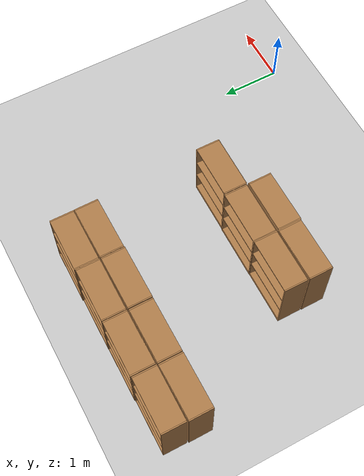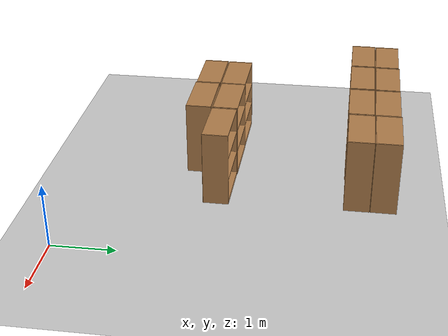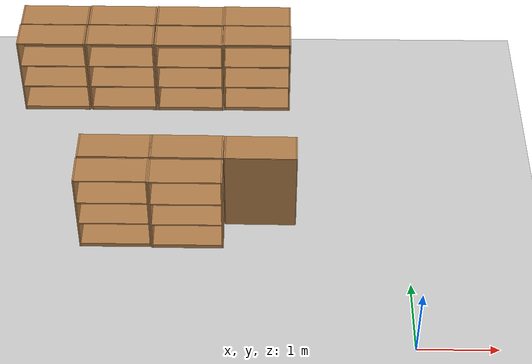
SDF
<sdf version="1.7">
 <world name="default">
  <model name="ground_plane">
   <static>1</static>
   <link name="link">
    <collision name="collision">
     <geometry><plane><normal>0 0 1</normal><size>100 100</size></plane></geometry>
     <surface>
      <contact><collide_bitmask>65535</collide_bitmask></contact>
      <friction><ode><mu>100</mu><mu2>50</mu2></ode></friction>
     </surface>
    </collision>
    <visual name="visual">
     <cast_shadows>0</cast_shadows>
     <geometry><plane><normal>0 0 1</normal><size>100 100</size></plane></geometry>
     <material>
      <script><uri>file://media/materials/scripts/gazebo.material</uri><name>Gazebo/Grey</name></script>
     </material>
    </visual>
   </link>
  </model>
  <model name="bookshelf">
   <static>1</static>
   <link name="link">
    <inertial><mass>1</mass></inertial>
    <collision name="back">
     <pose>0 0.005 0.6 0 -0 0</pose>
     <geometry><box><size>0.9 0.01 1.2</size></box></geometry>
    </collision>
    <visual name="visual1">
     <pose>0 0.005 0.6 0 -0 0</pose>
     <geometry><box><size>0.9 0.01 1.2</size></box></geometry>
     <material>
      <script><uri>file://media/materials/scripts/gazebo.material</uri><name>Gazebo/Wood</name></script>
     </material>
    </visual>
    <collision name="left_side">
     <pose>0.45 -0.195 0.6 0 -0 0</pose>
     <geometry><box><size>0.02 0.4 1.2</size></box></geometry>
    </collision>
    <visual name="visual2">
     <pose>0.45 -0.195 0.6 0 -0 0</pose>
     <geometry><box><size>0.02 0.4 1.2</size></box></geometry>
     <material>
      <script><uri>file://media/materials/scripts/gazebo.material</uri><name>Gazebo/Wood</name></script>
     </material>
    </visual>
    <collision name="right_side">
     <pose>-0.45 -0.195 0.6 0 -0 0</pose>
     <geometry><box><size>0.02 0.4 1.2</size></box></geometry>
    </collision>
    <visual name="visual3">
     <pose>-0.45 -0.195 0.6 0 -0 0</pose>
     <geometry><box><size>0.02 0.4 1.2</size></box></geometry>
     <material>
      <script><uri>file://media/materials/scripts/gazebo.material</uri><name>Gazebo/Wood</name></script>
     </material>
    </visual>
    <collision name="bottom">
     <pose>0 -0.195 0.03 0 -0 0</pose>
     <geometry><box><size>0.88 0.4 0.06</size></box></geometry>
    </collision>
    <visual name="visual4">
     <pose>0 -0.195 0.03 0 -0 0</pose>
     <geometry><box><size>0.88 0.4 0.06</size></box></geometry>
     <material>
      <script><uri>file://media/materials/scripts/gazebo.material</uri><name>Gazebo/Wood</name></script>
     </material>
    </visual>
    <collision name="top">
     <pose>0 -0.195 1.19 0 -0 0</pose>
     <geometry><box><size>0.88 0.4 0.02</size></box></geometry>
    </collision>
    <visual name="visual5">
     <pose>0 -0.195 1.19 0 -0 0</pose>
     <geometry><box><size>0.88 0.4 0.02</size></box></geometry>
     <material>
      <script><uri>file://media/materials/scripts/gazebo.material</uri><name>Gazebo/Wood</name></script>
     </material>
    </visual>
    <collision name="low_shelf">
     <pose>0 -0.195 0.43 0 -0 0</pose>
     <geometry><box><size>0.88 0.4 0.02</size></box></geometry>
    </collision>
    <visual name="visual6">
     <pose>0 -0.195 0.43 0 -0 0</pose>
     <geometry><box><size>0.88 0.4 0.02</size></box></geometry>
     <material>
      <script><uri>file://media/materials/scripts/gazebo.material</uri><name>Gazebo/Wood</name></script>
     </material>
    </visual>
    <collision name="high_shelf">
     <pose>0 -0.195 0.8 0 -0 0</pose>
     <geometry><box><size>0.88 0.4 0.02</size></box></geometry>
    </collision>
    <visual name="visual7">
     <pose>0 -0.195 0.8 0 -0 0</pose>
     <geometry><box><size>0.88 0.4 0.02</size></box></geometry>
     <material>
      <script><uri>file://media/materials/scripts/gazebo.material</uri><name>Gazebo/Wood</name></script>
     </material>
    </visual>
   </link>
   <pose>-1.9532 4.56923 0 0 -0 0</pose>
  </model>
  <model name="bookshelf_clone">
   <static>1</static>
   <link name="link">
    <inertial><mass>1</mass></inertial>
    <collision name="back">
     <pose>0 0.005 0.6 0 -0 0</pose>
     <geometry><box><size>0.9 0.01 1.2</size></box></geometry>
    </collision>
    <visual name="visual1">
     <pose>0 0.005 0.6 0 -0 0</pose>
     <geometry><box><size>0.9 0.01 1.2</size></box></geometry>
     <material>
      <script><uri>file://media/materials/scripts/gazebo.material</uri><name>Gazebo/Wood</name></script>
     </material>
    </visual>
    <collision name="left_side">
     <pose>0.45 -0.195 0.6 0 -0 0</pose>
     <geometry><box><size>0.02 0.4 1.2</size></box></geometry>
    </collision>
    <visual name="visual2">
     <pose>0.45 -0.195 0.6 0 -0 0</pose>
     <geometry><box><size>0.02 0.4 1.2</size></box></geometry>
     <material>
      <script><uri>file://media/materials/scripts/gazebo.material</uri><name>Gazebo/Wood</name></script>
     </material>
    </visual>
    <collision name="right_side">
     <pose>-0.45 -0.195 0.6 0 -0 0</pose>
     <geometry><box><size>0.02 0.4 1.2</size></box></geometry>
    </collision>
    <visual name="visual3">
     <pose>-0.45 -0.195 0.6 0 -0 0</pose>
     <geometry><box><size>0.02 0.4 1.2</size></box></geometry>
     <material>
      <script><uri>file://media/materials/scripts/gazebo.material</uri><name>Gazebo/Wood</name></script>
     </material>
    </visual>
    <collision name="bottom">
     <pose>0 -0.195 0.03 0 -0 0</pose>
     <geometry><box><size>0.88 0.4 0.06</size></box></geometry>
    </collision>
    <visual name="visual4">
     <pose>0 -0.195 0.03 0 -0 0</pose>
     <geometry><box><size>0.88 0.4 0.06</size></box></geometry>
     <material>
      <script><uri>file://media/materials/scripts/gazebo.material</uri><name>Gazebo/Wood</name></script>
     </material>
    </visual>
    <collision name="top">
     <pose>0 -0.195 1.19 0 -0 0</pose>
     <geometry><box><size>0.88 0.4 0.02</size></box></geometry>
    </collision>
    <visual name="visual5">
     <pose>0 -0.195 1.19 0 -0 0</pose>
     <geometry><box><size>0.88 0.4 0.02</size></box></geometry>
     <material>
      <script><uri>file://media/materials/scripts/gazebo.material</uri><name>Gazebo/Wood</name></script>
     </material>
    </visual>
    <collision name="low_shelf">
     <pose>0 -0.195 0.43 0 -0 0</pose>
     <geometry><box><size>0.88 0.4 0.02</size></box></geometry>
    </collision>
    <visual name="visual6">
     <pose>0 -0.195 0.43 0 -0 0</pose>
     <geometry><box><size>0.88 0.4 0.02</size></box></geometry>
     <material>
      <script><uri>file://media/materials/scripts/gazebo.material</uri><name>Gazebo/Wood</name></script>
     </material>
    </visual>
    <collision name="high_shelf">
     <pose>0 -0.195 0.8 0 -0 0</pose>
     <geometry><box><size>0.88 0.4 0.02</size></box></geometry>
    </collision>
    <visual name="visual7">
     <pose>0 -0.195 0.8 0 -0 0</pose>
     <geometry><box><size>0.88 0.4 0.02</size></box></geometry>
     <material>
      <script><uri>file://media/materials/scripts/gazebo.material</uri><name>Gazebo/Wood</name></script>
     </material>
    </visual>
   </link>
   <pose>-2.87744 4.5606 0 0 -0 0</pose>
  </model>
  <model name="bookshelf_clone_0">
   <static>1</static>
   <link name="link">
    <inertial><mass>1</mass></inertial>
    <collision name="back">
     <pose>0 0.005 0.6 0 -0 0</pose>
     <geometry><box><size>0.9 0.01 1.2</size></box></geometry>
    </collision>
    <visual name="visual1">
     <pose>0 0.005 0.6 0 -0 0</pose>
     <geometry><box><size>0.9 0.01 1.2</size></box></geometry>
     <material>
      <script><uri>file://media/materials/scripts/gazebo.material</uri><name>Gazebo/Wood</name></script>
     </material>
    </visual>
    <collision name="left_side">
     <pose>0.45 -0.195 0.6 0 -0 0</pose>
     <geometry><box><size>0.02 0.4 1.2</size></box></geometry>
    </collision>
    <visual name="visual2">
     <pose>0.45 -0.195 0.6 0 -0 0</pose>
     <geometry><box><size>0.02 0.4 1.2</size></box></geometry>
     <material>
      <script><uri>file://media/materials/scripts/gazebo.material</uri><name>Gazebo/Wood</name></script>
     </material>
    </visual>
    <collision name="right_side">
     <pose>-0.45 -0.195 0.6 0 -0 0</pose>
     <geometry><box><size>0.02 0.4 1.2</size></box></geometry>
    </collision>
    <visual name="visual3">
     <pose>-0.45 -0.195 0.6 0 -0 0</pose>
     <geometry><box><size>0.02 0.4 1.2</size></box></geometry>
     <material>
      <script><uri>file://media/materials/scripts/gazebo.material</uri><name>Gazebo/Wood</name></script>
     </material>
    </visual>
    <collision name="bottom">
     <pose>0 -0.195 0.03 0 -0 0</pose>
     <geometry><box><size>0.88 0.4 0.06</size></box></geometry>
    </collision>
    <visual name="visual4">
     <pose>0 -0.195 0.03 0 -0 0</pose>
     <geometry><box><size>0.88 0.4 0.06</size></box></geometry>
     <material>
      <script><uri>file://media/materials/scripts/gazebo.material</uri><name>Gazebo/Wood</name></script>
     </material>
    </visual>
    <collision name="top">
     <pose>0 -0.195 1.19 0 -0 0</pose>
     <geometry><box><size>0.88 0.4 0.02</size></box></geometry>
    </collision>
    <visual name="visual5">
     <pose>0 -0.195 1.19 0 -0 0</pose>
     <geometry><box><size>0.88 0.4 0.02</size></box></geometry>
     <material>
      <script><uri>file://media/materials/scripts/gazebo.material</uri><name>Gazebo/Wood</name></script>
     </material>
    </visual>
    <collision name="low_shelf">
     <pose>0 -0.195 0.43 0 -0 0</pose>
     <geometry><box><size>0.88 0.4 0.02</size></box></geometry>
    </collision>
    <visual name="visual6">
     <pose>0 -0.195 0.43 0 -0 0</pose>
     <geometry><box><size>0.88 0.4 0.02</size></box></geometry>
     <material>
      <script><uri>file://media/materials/scripts/gazebo.material</uri><name>Gazebo/Wood</name></script>
     </material>
    </visual>
    <collision name="high_shelf">
     <pose>0 -0.195 0.8 0 -0 0</pose>
     <geometry><box><size>0.88 0.4 0.02</size></box></geometry>
    </collision>
    <visual name="visual7">
     <pose>0 -0.195 0.8 0 -0 0</pose>
     <geometry><box><size>0.88 0.4 0.02</size></box></geometry>
     <material>
      <script><uri>file://media/materials/scripts/gazebo.material</uri><name>Gazebo/Wood</name></script>
     </material>
    </visual>
   </link>
   <pose>-3.81103 4.5641 0 0 -0 0</pose>
  </model>
  <model name="bookshelf_clone_1">
   <static>1</static>
   <link name="link">
    <inertial><mass>1</mass></inertial>
    <collision name="back">
     <pose>0 0.005 0.6 0 -0 0</pose>
     <geometry><box><size>0.9 0.01 1.2</size></box></geometry>
    </collision>
    <visual name="visual1">
     <pose>0 0.005 0.6 0 -0 0</pose>
     <geometry><box><size>0.9 0.01 1.2</size></box></geometry>
     <material>
      <script><uri>file://media/materials/scripts/gazebo.material</uri><name>Gazebo/Wood</name></script>
     </material>
    </visual>
    <collision name="left_side">
     <pose>0.45 -0.195 0.6 0 -0 0</pose>
     <geometry><box><size>0.02 0.4 1.2</size></box></geometry>
    </collision>
    <visual name="visual2">
     <pose>0.45 -0.195 0.6 0 -0 0</pose>
     <geometry><box><size>0.02 0.4 1.2</size></box></geometry>
     <material>
      <script><uri>file://media/materials/scripts/gazebo.material</uri><name>Gazebo/Wood</name></script>
     </material>
    </visual>
    <collision name="right_side">
     <pose>-0.45 -0.195 0.6 0 -0 0</pose>
     <geometry><box><size>0.02 0.4 1.2</size></box></geometry>
    </collision>
    <visual name="visual3">
     <pose>-0.45 -0.195 0.6 0 -0 0</pose>
     <geometry><box><size>0.02 0.4 1.2</size></box></geometry>
     <material>
      <script><uri>file://media/materials/scripts/gazebo.material</uri><name>Gazebo/Wood</name></script>
     </material>
    </visual>
    <collision name="bottom">
     <pose>0 -0.195 0.03 0 -0 0</pose>
     <geometry><box><size>0.88 0.4 0.06</size></box></geometry>
    </collision>
    <visual name="visual4">
     <pose>0 -0.195 0.03 0 -0 0</pose>
     <geometry><box><size>0.88 0.4 0.06</size></box></geometry>
     <material>
      <script><uri>file://media/materials/scripts/gazebo.material</uri><name>Gazebo/Wood</name></script>
     </material>
    </visual>
    <collision name="top">
     <pose>0 -0.195 1.19 0 -0 0</pose>
     <geometry><box><size>0.88 0.4 0.02</size></box></geometry>
    </collision>
    <visual name="visual5">
     <pose>0 -0.195 1.19 0 -0 0</pose>
     <geometry><box><size>0.88 0.4 0.02</size></box></geometry>
     <material>
      <script><uri>file://media/materials/scripts/gazebo.material</uri><name>Gazebo/Wood</name></script>
     </material>
    </visual>
    <collision name="low_shelf">
     <pose>0 -0.195 0.43 0 -0 0</pose>
     <geometry><box><size>0.88 0.4 0.02</size></box></geometry>
    </collision>
    <visual name="visual6">
     <pose>0 -0.195 0.43 0 -0 0</pose>
     <geometry><box><size>0.88 0.4 0.02</size></box></geometry>
     <material>
      <script><uri>file://media/materials/scripts/gazebo.material</uri><name>Gazebo/Wood</name></script>
     </material>
    </visual>
    <collision name="high_shelf">
     <pose>0 -0.195 0.8 0 -0 0</pose>
     <geometry><box><size>0.88 0.4 0.02</size></box></geometry>
    </collision>
    <visual name="visual7">
     <pose>0 -0.195 0.8 0 -0 0</pose>
     <geometry><box><size>0.88 0.4 0.02</size></box></geometry>
     <material>
      <script><uri>file://media/materials/scripts/gazebo.material</uri><name>Gazebo/Wood</name></script>
     </material>
    </visual>
   </link>
   <pose>-4.74149 4.56279 0 0 -0 0</pose>
  </model>
  <model name="bookshelf_clone_2">
   <static>1</static>
   <link name="link">
    <inertial><mass>1</mass></inertial>
    <collision name="back">
     <pose>0 0.005 0.6 0 -0 0</pose>
     <geometry><box><size>0.9 0.01 1.2</size></box></geometry>
    </collision>
    <visual name="visual1">
     <pose>0 0.005 0.6 0 -0 0</pose>
     <geometry><box><size>0.9 0.01 1.2</size></box></geometry>
     <material>
      <script><uri>file://media/materials/scripts/gazebo.material</uri><name>Gazebo/Wood</name></script>
     </material>
    </visual>
    <collision name="left_side">
     <pose>0.45 -0.195 0.6 0 -0 0</pose>
     <geometry><box><size>0.02 0.4 1.2</size></box></geometry>
    </collision>
    <visual name="visual2">
     <pose>0.45 -0.195 0.6 0 -0 0</pose>
     <geometry><box><size>0.02 0.4 1.2</size></box></geometry>
     <material>
      <script><uri>file://media/materials/scripts/gazebo.material</uri><name>Gazebo/Wood</name></script>
     </material>
    </visual>
    <collision name="right_side">
     <pose>-0.45 -0.195 0.6 0 -0 0</pose>
     <geometry><box><size>0.02 0.4 1.2</size></box></geometry>
    </collision>
    <visual name="visual3">
     <pose>-0.45 -0.195 0.6 0 -0 0</pose>
     <geometry><box><size>0.02 0.4 1.2</size></box></geometry>
     <material>
      <script><uri>file://media/materials/scripts/gazebo.material</uri><name>Gazebo/Wood</name></script>
     </material>
    </visual>
    <collision name="bottom">
     <pose>0 -0.195 0.03 0 -0 0</pose>
     <geometry><box><size>0.88 0.4 0.06</size></box></geometry>
    </collision>
    <visual name="visual4">
     <pose>0 -0.195 0.03 0 -0 0</pose>
     <geometry><box><size>0.88 0.4 0.06</size></box></geometry>
     <material>
      <script><uri>file://media/materials/scripts/gazebo.material</uri><name>Gazebo/Wood</name></script>
     </material>
    </visual>
    <collision name="top">
     <pose>0 -0.195 1.19 0 -0 0</pose>
     <geometry><box><size>0.88 0.4 0.02</size></box></geometry>
    </collision>
    <visual name="visual5">
     <pose>0 -0.195 1.19 0 -0 0</pose>
     <geometry><box><size>0.88 0.4 0.02</size></box></geometry>
     <material>
      <script><uri>file://media/materials/scripts/gazebo.material</uri><name>Gazebo/Wood</name></script>
     </material>
    </visual>
    <collision name="low_shelf">
     <pose>0 -0.195 0.43 0 -0 0</pose>
     <geometry><box><size>0.88 0.4 0.02</size></box></geometry>
    </collision>
    <visual name="visual6">
     <pose>0 -0.195 0.43 0 -0 0</pose>
     <geometry><box><size>0.88 0.4 0.02</size></box></geometry>
     <material>
      <script><uri>file://media/materials/scripts/gazebo.material</uri><name>Gazebo/Wood</name></script>
     </material>
    </visual>
    <collision name="high_shelf">
     <pose>0 -0.195 0.8 0 -0 0</pose>
     <geometry><box><size>0.88 0.4 0.02</size></box></geometry>
    </collision>
    <visual name="visual7">
     <pose>0 -0.195 0.8 0 -0 0</pose>
     <geometry><box><size>0.88 0.4 0.02</size></box></geometry>
     <material>
      <script><uri>file://media/materials/scripts/gazebo.material</uri><name>Gazebo/Wood</name></script>
     </material>
    </visual>
   </link>
   <pose>-1.95568 4.59398 0 0 -0 3.13403</pose>
  </model>
  <model name="bookshelf_clone_2_clone">
   <static>1</static>
   <link name="link">
    <inertial><mass>1</mass></inertial>
    <collision name="back">
     <pose>0 0.005 0.6 0 -0 0</pose>
     <geometry><box><size>0.9 0.01 1.2</size></box></geometry>
    </collision>
    <visual name="visual1">
     <pose>0 0.005 0.6 0 -0 0</pose>
     <geometry><box><size>0.9 0.01 1.2</size></box></geometry>
     <material>
      <script><uri>file://media/materials/scripts/gazebo.material</uri><name>Gazebo/Wood</name></script>
     </material>
    </visual>
    <collision name="left_side">
     <pose>0.45 -0.195 0.6 0 -0 0</pose>
     <geometry><box><size>0.02 0.4 1.2</size></box></geometry>
    </collision>
    <visual name="visual2">
     <pose>0.45 -0.195 0.6 0 -0 0</pose>
     <geometry><box><size>0.02 0.4 1.2</size></box></geometry>
     <material>
      <script><uri>file://media/materials/scripts/gazebo.material</uri><name>Gazebo/Wood</name></script>
     </material>
    </visual>
    <collision name="right_side">
     <pose>-0.45 -0.195 0.6 0 -0 0</pose>
     <geometry><box><size>0.02 0.4 1.2</size></box></geometry>
    </collision>
    <visual name="visual3">
     <pose>-0.45 -0.195 0.6 0 -0 0</pose>
     <geometry><box><size>0.02 0.4 1.2</size></box></geometry>
     <material>
      <script><uri>file://media/materials/scripts/gazebo.material</uri><name>Gazebo/Wood</name></script>
     </material>
    </visual>
    <collision name="bottom">
     <pose>0 -0.195 0.03 0 -0 0</pose>
     <geometry><box><size>0.88 0.4 0.06</size></box></geometry>
    </collision>
    <visual name="visual4">
     <pose>0 -0.195 0.03 0 -0 0</pose>
     <geometry><box><size>0.88 0.4 0.06</size></box></geometry>
     <material>
      <script><uri>file://media/materials/scripts/gazebo.material</uri><name>Gazebo/Wood</name></script>
     </material>
    </visual>
    <collision name="top">
     <pose>0 -0.195 1.19 0 -0 0</pose>
     <geometry><box><size>0.88 0.4 0.02</size></box></geometry>
    </collision>
    <visual name="visual5">
     <pose>0 -0.195 1.19 0 -0 0</pose>
     <geometry><box><size>0.88 0.4 0.02</size></box></geometry>
     <material>
      <script><uri>file://media/materials/scripts/gazebo.material</uri><name>Gazebo/Wood</name></script>
     </material>
    </visual>
    <collision name="low_shelf">
     <pose>0 -0.195 0.43 0 -0 0</pose>
     <geometry><box><size>0.88 0.4 0.02</size></box></geometry>
    </collision>
    <visual name="visual6">
     <pose>0 -0.195 0.43 0 -0 0</pose>
     <geometry><box><size>0.88 0.4 0.02</size></box></geometry>
     <material>
      <script><uri>file://media/materials/scripts/gazebo.material</uri><name>Gazebo/Wood</name></script>
     </material>
    </visual>
    <collision name="high_shelf">
     <pose>0 -0.195 0.8 0 -0 0</pose>
     <geometry><box><size>0.88 0.4 0.02</size></box></geometry>
    </collision>
    <visual name="visual7">
     <pose>0 -0.195 0.8 0 -0 0</pose>
     <geometry><box><size>0.88 0.4 0.02</size></box></geometry>
     <material>
      <script><uri>file://media/materials/scripts/gazebo.material</uri><name>Gazebo/Wood</name></script>
     </material>
    </visual>
   </link>
   <pose>-2.87586 4.58972 0 0 -0 3.13403</pose>
  </model>
  <model name="bookshelf_clone_2_clone_0">
   <static>1</static>
   <link name="link">
    <inertial><mass>1</mass></inertial>
    <collision name="back">
     <pose>0 0.005 0.6 0 -0 0</pose>
     <geometry><box><size>0.9 0.01 1.2</size></box></geometry>
    </collision>
    <visual name="visual1">
     <pose>0 0.005 0.6 0 -0 0</pose>
     <geometry><box><size>0.9 0.01 1.2</size></box></geometry>
     <material>
      <script><uri>file://media/materials/scripts/gazebo.material</uri><name>Gazebo/Wood</name></script>
     </material>
    </visual>
    <collision name="left_side">
     <pose>0.45 -0.195 0.6 0 -0 0</pose>
     <geometry><box><size>0.02 0.4 1.2</size></box></geometry>
    </collision>
    <visual name="visual2">
     <pose>0.45 -0.195 0.6 0 -0 0</pose>
     <geometry><box><size>0.02 0.4 1.2</size></box></geometry>
     <material>
      <script><uri>file://media/materials/scripts/gazebo.material</uri><name>Gazebo/Wood</name></script>
     </material>
    </visual>
    <collision name="right_side">
     <pose>-0.45 -0.195 0.6 0 -0 0</pose>
     <geometry><box><size>0.02 0.4 1.2</size></box></geometry>
    </collision>
    <visual name="visual3">
     <pose>-0.45 -0.195 0.6 0 -0 0</pose>
     <geometry><box><size>0.02 0.4 1.2</size></box></geometry>
     <material>
      <script><uri>file://media/materials/scripts/gazebo.material</uri><name>Gazebo/Wood</name></script>
     </material>
    </visual>
    <collision name="bottom">
     <pose>0 -0.195 0.03 0 -0 0</pose>
     <geometry><box><size>0.88 0.4 0.06</size></box></geometry>
    </collision>
    <visual name="visual4">
     <pose>0 -0.195 0.03 0 -0 0</pose>
     <geometry><box><size>0.88 0.4 0.06</size></box></geometry>
     <material>
      <script><uri>file://media/materials/scripts/gazebo.material</uri><name>Gazebo/Wood</name></script>
     </material>
    </visual>
    <collision name="top">
     <pose>0 -0.195 1.19 0 -0 0</pose>
     <geometry><box><size>0.88 0.4 0.02</size></box></geometry>
    </collision>
    <visual name="visual5">
     <pose>0 -0.195 1.19 0 -0 0</pose>
     <geometry><box><size>0.88 0.4 0.02</size></box></geometry>
     <material>
      <script><uri>file://media/materials/scripts/gazebo.material</uri><name>Gazebo/Wood</name></script>
     </material>
    </visual>
    <collision name="low_shelf">
     <pose>0 -0.195 0.43 0 -0 0</pose>
     <geometry><box><size>0.88 0.4 0.02</size></box></geometry>
    </collision>
    <visual name="visual6">
     <pose>0 -0.195 0.43 0 -0 0</pose>
     <geometry><box><size>0.88 0.4 0.02</size></box></geometry>
     <material>
      <script><uri>file://media/materials/scripts/gazebo.material</uri><name>Gazebo/Wood</name></script>
     </material>
    </visual>
    <collision name="high_shelf">
     <pose>0 -0.195 0.8 0 -0 0</pose>
     <geometry><box><size>0.88 0.4 0.02</size></box></geometry>
    </collision>
    <visual name="visual7">
     <pose>0 -0.195 0.8 0 -0 0</pose>
     <geometry><box><size>0.88 0.4 0.02</size></box></geometry>
     <material>
      <script><uri>file://media/materials/scripts/gazebo.material</uri><name>Gazebo/Wood</name></script>
     </material>
    </visual>
   </link>
   <pose>-3.80256 4.59298 0 0 -0 3.13403</pose>
  </model>
  <model name="bookshelf_clone_2_clone_1">
   <static>1</static>
   <link name="link">
    <inertial><mass>1</mass></inertial>
    <collision name="back">
     <pose>0 0.005 0.6 0 -0 0</pose>
     <geometry><box><size>0.9 0.01 1.2</size></box></geometry>
    </collision>
    <visual name="visual1">
     <pose>0 0.005 0.6 0 -0 0</pose>
     <geometry><box><size>0.9 0.01 1.2</size></box></geometry>
     <material>
      <script><uri>file://media/materials/scripts/gazebo.material</uri><name>Gazebo/Wood</name></script>
     </material>
    </visual>
    <collision name="left_side">
     <pose>0.45 -0.195 0.6 0 -0 0</pose>
     <geometry><box><size>0.02 0.4 1.2</size></box></geometry>
    </collision>
    <visual name="visual2">
     <pose>0.45 -0.195 0.6 0 -0 0</pose>
     <geometry><box><size>0.02 0.4 1.2</size></box></geometry>
     <material>
      <script><uri>file://media/materials/scripts/gazebo.material</uri><name>Gazebo/Wood</name></script>
     </material>
    </visual>
    <collision name="right_side">
     <pose>-0.45 -0.195 0.6 0 -0 0</pose>
     <geometry><box><size>0.02 0.4 1.2</size></box></geometry>
    </collision>
    <visual name="visual3">
     <pose>-0.45 -0.195 0.6 0 -0 0</pose>
     <geometry><box><size>0.02 0.4 1.2</size></box></geometry>
     <material>
      <script><uri>file://media/materials/scripts/gazebo.material</uri><name>Gazebo/Wood</name></script>
     </material>
    </visual>
    <collision name="bottom">
     <pose>0 -0.195 0.03 0 -0 0</pose>
     <geometry><box><size>0.88 0.4 0.06</size></box></geometry>
    </collision>
    <visual name="visual4">
     <pose>0 -0.195 0.03 0 -0 0</pose>
     <geometry><box><size>0.88 0.4 0.06</size></box></geometry>
     <material>
      <script><uri>file://media/materials/scripts/gazebo.material</uri><name>Gazebo/Wood</name></script>
     </material>
    </visual>
    <collision name="top">
     <pose>0 -0.195 1.19 0 -0 0</pose>
     <geometry><box><size>0.88 0.4 0.02</size></box></geometry>
    </collision>
    <visual name="visual5">
     <pose>0 -0.195 1.19 0 -0 0</pose>
     <geometry><box><size>0.88 0.4 0.02</size></box></geometry>
     <material>
      <script><uri>file://media/materials/scripts/gazebo.material</uri><name>Gazebo/Wood</name></script>
     </material>
    </visual>
    <collision name="low_shelf">
     <pose>0 -0.195 0.43 0 -0 0</pose>
     <geometry><box><size>0.88 0.4 0.02</size></box></geometry>
    </collision>
    <visual name="visual6">
     <pose>0 -0.195 0.43 0 -0 0</pose>
     <geometry><box><size>0.88 0.4 0.02</size></box></geometry>
     <material>
      <script><uri>file://media/materials/scripts/gazebo.material</uri><name>Gazebo/Wood</name></script>
     </material>
    </visual>
    <collision name="high_shelf">
     <pose>0 -0.195 0.8 0 -0 0</pose>
     <geometry><box><size>0.88 0.4 0.02</size></box></geometry>
    </collision>
    <visual name="visual7">
     <pose>0 -0.195 0.8 0 -0 0</pose>
     <geometry><box><size>0.88 0.4 0.02</size></box></geometry>
     <material>
      <script><uri>file://media/materials/scripts/gazebo.material</uri><name>Gazebo/Wood</name></script>
     </material>
    </visual>
   </link>
   <pose>-4.73006 4.59001 0 0 -0 3.13403</pose>
  </model>
  <model name="bookshelf_clone_2_clone_2">
   <static>1</static>
   <link name="link">
    <inertial><mass>1</mass></inertial>
    <collision name="back">
     <pose>0 0.005 0.6 0 -0 0</pose>
     <geometry><box><size>0.9 0.01 1.2</size></box></geometry>
    </collision>
    <visual name="visual1">
     <pose>0 0.005 0.6 0 -0 0</pose>
     <geometry><box><size>0.9 0.01 1.2</size></box></geometry>
     <material>
      <script><uri>file://media/materials/scripts/gazebo.material</uri><name>Gazebo/Wood</name></script>
     </material>
    </visual>
    <collision name="left_side">
     <pose>0.45 -0.195 0.6 0 -0 0</pose>
     <geometry><box><size>0.02 0.4 1.2</size></box></geometry>
    </collision>
    <visual name="visual2">
     <pose>0.45 -0.195 0.6 0 -0 0</pose>
     <geometry><box><size>0.02 0.4 1.2</size></box></geometry>
     <material>
      <script><uri>file://media/materials/scripts/gazebo.material</uri><name>Gazebo/Wood</name></script>
     </material>
    </visual>
    <collision name="right_side">
     <pose>-0.45 -0.195 0.6 0 -0 0</pose>
     <geometry><box><size>0.02 0.4 1.2</size></box></geometry>
    </collision>
    <visual name="visual3">
     <pose>-0.45 -0.195 0.6 0 -0 0</pose>
     <geometry><box><size>0.02 0.4 1.2</size></box></geometry>
     <material>
      <script><uri>file://media/materials/scripts/gazebo.material</uri><name>Gazebo/Wood</name></script>
     </material>
    </visual>
    <collision name="bottom">
     <pose>0 -0.195 0.03 0 -0 0</pose>
     <geometry><box><size>0.88 0.4 0.06</size></box></geometry>
    </collision>
    <visual name="visual4">
     <pose>0 -0.195 0.03 0 -0 0</pose>
     <geometry><box><size>0.88 0.4 0.06</size></box></geometry>
     <material>
      <script><uri>file://media/materials/scripts/gazebo.material</uri><name>Gazebo/Wood</name></script>
     </material>
    </visual>
    <collision name="top">
     <pose>0 -0.195 1.19 0 -0 0</pose>
     <geometry><box><size>0.88 0.4 0.02</size></box></geometry>
    </collision>
    <visual name="visual5">
     <pose>0 -0.195 1.19 0 -0 0</pose>
     <geometry><box><size>0.88 0.4 0.02</size></box></geometry>
     <material>
      <script><uri>file://media/materials/scripts/gazebo.material</uri><name>Gazebo/Wood</name></script>
     </material>
    </visual>
    <collision name="low_shelf">
     <pose>0 -0.195 0.43 0 -0 0</pose>
     <geometry><box><size>0.88 0.4 0.02</size></box></geometry>
    </collision>
    <visual name="visual6">
     <pose>0 -0.195 0.43 0 -0 0</pose>
     <geometry><box><size>0.88 0.4 0.02</size></box></geometry>
     <material>
      <script><uri>file://media/materials/scripts/gazebo.material</uri><name>Gazebo/Wood</name></script>
     </material>
    </visual>
    <collision name="high_shelf">
     <pose>0 -0.195 0.8 0 -0 0</pose>
     <geometry><box><size>0.88 0.4 0.02</size></box></geometry>
    </collision>
    <visual name="visual7">
     <pose>0 -0.195 0.8 0 -0 0</pose>
     <geometry><box><size>0.88 0.4 0.02</size></box></geometry>
     <material>
      <script><uri>file://media/materials/scripts/gazebo.material</uri><name>Gazebo/Wood</name></script>
     </material>
    </visual>
   </link>
   <pose>-1.88657 2.01222 0 0 -0 3.13403</pose>
  </model>
  <model name="bookshelf_clone_2_clone_3">
   <static>1</static>
   <link name="link">
    <inertial><mass>1</mass></inertial>
    <collision name="back">
     <pose>0 0.005 0.6 0 -0 0</pose>
     <geometry><box><size>0.9 0.01 1.2</size></box></geometry>
    </collision>
    <visual name="visual1">
     <pose>0 0.005 0.6 0 -0 0</pose>
     <geometry><box><size>0.9 0.01 1.2</size></box></geometry>
     <material>
      <script><uri>file://media/materials/scripts/gazebo.material</uri><name>Gazebo/Wood</name></script>
     </material>
    </visual>
    <collision name="left_side">
     <pose>0.45 -0.195 0.6 0 -0 0</pose>
     <geometry><box><size>0.02 0.4 1.2</size></box></geometry>
    </collision>
    <visual name="visual2">
     <pose>0.45 -0.195 0.6 0 -0 0</pose>
     <geometry><box><size>0.02 0.4 1.2</size></box></geometry>
     <material>
      <script><uri>file://media/materials/scripts/gazebo.material</uri><name>Gazebo/Wood</name></script>
     </material>
    </visual>
    <collision name="right_side">
     <pose>-0.45 -0.195 0.6 0 -0 0</pose>
     <geometry><box><size>0.02 0.4 1.2</size></box></geometry>
    </collision>
    <visual name="visual3">
     <pose>-0.45 -0.195 0.6 0 -0 0</pose>
     <geometry><box><size>0.02 0.4 1.2</size></box></geometry>
     <material>
      <script><uri>file://media/materials/scripts/gazebo.material</uri><name>Gazebo/Wood</name></script>
     </material>
    </visual>
    <collision name="bottom">
     <pose>0 -0.195 0.03 0 -0 0</pose>
     <geometry><box><size>0.88 0.4 0.06</size></box></geometry>
    </collision>
    <visual name="visual4">
     <pose>0 -0.195 0.03 0 -0 0</pose>
     <geometry><box><size>0.88 0.4 0.06</size></box></geometry>
     <material>
      <script><uri>file://media/materials/scripts/gazebo.material</uri><name>Gazebo/Wood</name></script>
     </material>
    </visual>
    <collision name="top">
     <pose>0 -0.195 1.19 0 -0 0</pose>
     <geometry><box><size>0.88 0.4 0.02</size></box></geometry>
    </collision>
    <visual name="visual5">
     <pose>0 -0.195 1.19 0 -0 0</pose>
     <geometry><box><size>0.88 0.4 0.02</size></box></geometry>
     <material>
      <script><uri>file://media/materials/scripts/gazebo.material</uri><name>Gazebo/Wood</name></script>
     </material>
    </visual>
    <collision name="low_shelf">
     <pose>0 -0.195 0.43 0 -0 0</pose>
     <geometry><box><size>0.88 0.4 0.02</size></box></geometry>
    </collision>
    <visual name="visual6">
     <pose>0 -0.195 0.43 0 -0 0</pose>
     <geometry><box><size>0.88 0.4 0.02</size></box></geometry>
     <material>
      <script><uri>file://media/materials/scripts/gazebo.material</uri><name>Gazebo/Wood</name></script>
     </material>
    </visual>
    <collision name="high_shelf">
     <pose>0 -0.195 0.8 0 -0 0</pose>
     <geometry><box><size>0.88 0.4 0.02</size></box></geometry>
    </collision>
    <visual name="visual7">
     <pose>0 -0.195 0.8 0 -0 0</pose>
     <geometry><box><size>0.88 0.4 0.02</size></box></geometry>
     <material>
      <script><uri>file://media/materials/scripts/gazebo.material</uri><name>Gazebo/Wood</name></script>
     </material>
    </visual>
   </link>
   <pose>-2.81336 2.02668 0 0 -0 3.13403</pose>
  </model>
  <model name="bookshelf_clone_2_clone_4">
   <static>1</static>
   <link name="link">
    <inertial><mass>1</mass></inertial>
    <collision name="back">
     <pose>0 0.005 0.6 0 -0 0</pose>
     <geometry><box><size>0.9 0.01 1.2</size></box></geometry>
    </collision>
    <visual name="visual1">
     <pose>0 0.005 0.6 0 -0 0</pose>
     <geometry><box><size>0.9 0.01 1.2</size></box></geometry>
     <material>
      <script><uri>file://media/materials/scripts/gazebo.material</uri><name>Gazebo/Wood</name></script>
     </material>
    </visual>
    <collision name="left_side">
     <pose>0.45 -0.195 0.6 0 -0 0</pose>
     <geometry><box><size>0.02 0.4 1.2</size></box></geometry>
    </collision>
    <visual name="visual2">
     <pose>0.45 -0.195 0.6 0 -0 0</pose>
     <geometry><box><size>0.02 0.4 1.2</size></box></geometry>
     <material>
      <script><uri>file://media/materials/scripts/gazebo.material</uri><name>Gazebo/Wood</name></script>
     </material>
    </visual>
    <collision name="right_side">
     <pose>-0.45 -0.195 0.6 0 -0 0</pose>
     <geometry><box><size>0.02 0.4 1.2</size></box></geometry>
    </collision>
    <visual name="visual3">
     <pose>-0.45 -0.195 0.6 0 -0 0</pose>
     <geometry><box><size>0.02 0.4 1.2</size></box></geometry>
     <material>
      <script><uri>file://media/materials/scripts/gazebo.material</uri><name>Gazebo/Wood</name></script>
     </material>
    </visual>
    <collision name="bottom">
     <pose>0 -0.195 0.03 0 -0 0</pose>
     <geometry><box><size>0.88 0.4 0.06</size></box></geometry>
    </collision>
    <visual name="visual4">
     <pose>0 -0.195 0.03 0 -0 0</pose>
     <geometry><box><size>0.88 0.4 0.06</size></box></geometry>
     <material>
      <script><uri>file://media/materials/scripts/gazebo.material</uri><name>Gazebo/Wood</name></script>
     </material>
    </visual>
    <collision name="top">
     <pose>0 -0.195 1.19 0 -0 0</pose>
     <geometry><box><size>0.88 0.4 0.02</size></box></geometry>
    </collision>
    <visual name="visual5">
     <pose>0 -0.195 1.19 0 -0 0</pose>
     <geometry><box><size>0.88 0.4 0.02</size></box></geometry>
     <material>
      <script><uri>file://media/materials/scripts/gazebo.material</uri><name>Gazebo/Wood</name></script>
     </material>
    </visual>
    <collision name="low_shelf">
     <pose>0 -0.195 0.43 0 -0 0</pose>
     <geometry><box><size>0.88 0.4 0.02</size></box></geometry>
    </collision>
    <visual name="visual6">
     <pose>0 -0.195 0.43 0 -0 0</pose>
     <geometry><box><size>0.88 0.4 0.02</size></box></geometry>
     <material>
      <script><uri>file://media/materials/scripts/gazebo.material</uri><name>Gazebo/Wood</name></script>
     </material>
    </visual>
    <collision name="high_shelf">
     <pose>0 -0.195 0.8 0 -0 0</pose>
     <geometry><box><size>0.88 0.4 0.02</size></box></geometry>
    </collision>
    <visual name="visual7">
     <pose>0 -0.195 0.8 0 -0 0</pose>
     <geometry><box><size>0.88 0.4 0.02</size></box></geometry>
     <material>
      <script><uri>file://media/materials/scripts/gazebo.material</uri><name>Gazebo/Wood</name></script>
     </material>
    </visual>
   </link>
   <pose>-3.72607 2.02965 0 0 -0 3.13403</pose>
  </model>
  <model name="bookshelf_clone_4">
   <static>1</static>
   <link name="link">
    <inertial><mass>1</mass></inertial>
    <collision name="back">
     <pose>0 0.005 0.6 0 -0 0</pose>
     <geometry><box><size>0.9 0.01 1.2</size></box></geometry>
    </collision>
    <visual name="visual1">
     <pose>0 0.005 0.6 0 -0 0</pose>
     <geometry><box><size>0.9 0.01 1.2</size></box></geometry>
     <material>
      <script><uri>file://media/materials/scripts/gazebo.material</uri><name>Gazebo/Wood</name></script>
     </material>
    </visual>
    <collision name="left_side">
     <pose>0.45 -0.195 0.6 0 -0 0</pose>
     <geometry><box><size>0.02 0.4 1.2</size></box></geometry>
    </collision>
    <visual name="visual2">
     <pose>0.45 -0.195 0.6 0 -0 0</pose>
     <geometry><box><size>0.02 0.4 1.2</size></box></geometry>
     <material>
      <script><uri>file://media/materials/scripts/gazebo.material</uri><name>Gazebo/Wood</name></script>
     </material>
    </visual>
    <collision name="right_side">
     <pose>-0.45 -0.195 0.6 0 -0 0</pose>
     <geometry><box><size>0.02 0.4 1.2</size></box></geometry>
    </collision>
    <visual name="visual3">
     <pose>-0.45 -0.195 0.6 0 -0 0</pose>
     <geometry><box><size>0.02 0.4 1.2</size></box></geometry>
     <material>
      <script><uri>file://media/materials/scripts/gazebo.material</uri><name>Gazebo/Wood</name></script>
     </material>
    </visual>
    <collision name="bottom">
     <pose>0 -0.195 0.03 0 -0 0</pose>
     <geometry><box><size>0.88 0.4 0.06</size></box></geometry>
    </collision>
    <visual name="visual4">
     <pose>0 -0.195 0.03 0 -0 0</pose>
     <geometry><box><size>0.88 0.4 0.06</size></box></geometry>
     <material>
      <script><uri>file://media/materials/scripts/gazebo.material</uri><name>Gazebo/Wood</name></script>
     </material>
    </visual>
    <collision name="top">
     <pose>0 -0.195 1.19 0 -0 0</pose>
     <geometry><box><size>0.88 0.4 0.02</size></box></geometry>
    </collision>
    <visual name="visual5">
     <pose>0 -0.195 1.19 0 -0 0</pose>
     <geometry><box><size>0.88 0.4 0.02</size></box></geometry>
     <material>
      <script><uri>file://media/materials/scripts/gazebo.material</uri><name>Gazebo/Wood</name></script>
     </material>
    </visual>
    <collision name="low_shelf">
     <pose>0 -0.195 0.43 0 -0 0</pose>
     <geometry><box><size>0.88 0.4 0.02</size></box></geometry>
    </collision>
    <visual name="visual6">
     <pose>0 -0.195 0.43 0 -0 0</pose>
     <geometry><box><size>0.88 0.4 0.02</size></box></geometry>
     <material>
      <script><uri>file://media/materials/scripts/gazebo.material</uri><name>Gazebo/Wood</name></script>
     </material>
    </visual>
    <collision name="high_shelf">
     <pose>0 -0.195 0.8 0 -0 0</pose>
     <geometry><box><size>0.88 0.4 0.02</size></box></geometry>
    </collision>
    <visual name="visual7">
     <pose>0 -0.195 0.8 0 -0 0</pose>
     <geometry><box><size>0.88 0.4 0.02</size></box></geometry>
     <material>
      <script><uri>file://media/materials/scripts/gazebo.material</uri><name>Gazebo/Wood</name></script>
     </material>
    </visual>
   </link>
   <pose>-2.81249 1.9826 0 0 -0 0</pose>
  </model>
  <model name="bookshelf_clone_5">
   <static>1</static>
   <link name="link">
    <inertial><mass>1</mass></inertial>
    <collision name="back">
     <pose>0 0.005 0.6 0 -0 0</pose>
     <geometry><box><size>0.9 0.01 1.2</size></box></geometry>
    </collision>
    <visual name="visual1">
     <pose>0 0.005 0.6 0 -0 0</pose>
     <geometry><box><size>0.9 0.01 1.2</size></box></geometry>
     <material>
      <script><uri>file://media/materials/scripts/gazebo.material</uri><name>Gazebo/Wood</name></script>
     </material>
    </visual>
    <collision name="left_side">
     <pose>0.45 -0.195 0.6 0 -0 0</pose>
     <geometry><box><size>0.02 0.4 1.2</size></box></geometry>
    </collision>
    <visual name="visual2">
     <pose>0.45 -0.195 0.6 0 -0 0</pose>
     <geometry><box><size>0.02 0.4 1.2</size></box></geometry>
     <material>
      <script><uri>file://media/materials/scripts/gazebo.material</uri><name>Gazebo/Wood</name></script>
     </material>
    </visual>
    <collision name="right_side">
     <pose>-0.45 -0.195 0.6 0 -0 0</pose>
     <geometry><box><size>0.02 0.4 1.2</size></box></geometry>
    </collision>
    <visual name="visual3">
     <pose>-0.45 -0.195 0.6 0 -0 0</pose>
     <geometry><box><size>0.02 0.4 1.2</size></box></geometry>
     <material>
      <script><uri>file://media/materials/scripts/gazebo.material</uri><name>Gazebo/Wood</name></script>
     </material>
    </visual>
    <collision name="bottom">
     <pose>0 -0.195 0.03 0 -0 0</pose>
     <geometry><box><size>0.88 0.4 0.06</size></box></geometry>
    </collision>
    <visual name="visual4">
     <pose>0 -0.195 0.03 0 -0 0</pose>
     <geometry><box><size>0.88 0.4 0.06</size></box></geometry>
     <material>
      <script><uri>file://media/materials/scripts/gazebo.material</uri><name>Gazebo/Wood</name></script>
     </material>
    </visual>
    <collision name="top">
     <pose>0 -0.195 1.19 0 -0 0</pose>
     <geometry><box><size>0.88 0.4 0.02</size></box></geometry>
    </collision>
    <visual name="visual5">
     <pose>0 -0.195 1.19 0 -0 0</pose>
     <geometry><box><size>0.88 0.4 0.02</size></box></geometry>
     <material>
      <script><uri>file://media/materials/scripts/gazebo.material</uri><name>Gazebo/Wood</name></script>
     </material>
    </visual>
    <collision name="low_shelf">
     <pose>0 -0.195 0.43 0 -0 0</pose>
     <geometry><box><size>0.88 0.4 0.02</size></box></geometry>
    </collision>
    <visual name="visual6">
     <pose>0 -0.195 0.43 0 -0 0</pose>
     <geometry><box><size>0.88 0.4 0.02</size></box></geometry>
     <material>
      <script><uri>file://media/materials/scripts/gazebo.material</uri><name>Gazebo/Wood</name></script>
     </material>
    </visual>
    <collision name="high_shelf">
     <pose>0 -0.195 0.8 0 -0 0</pose>
     <geometry><box><size>0.88 0.4 0.02</size></box></geometry>
    </collision>
    <visual name="visual7">
     <pose>0 -0.195 0.8 0 -0 0</pose>
     <geometry><box><size>0.88 0.4 0.02</size></box></geometry>
     <material>
      <script><uri>file://media/materials/scripts/gazebo.material</uri><name>Gazebo/Wood</name></script>
     </material>
    </visual>
   </link>
   <pose>-3.73233 1.99558 0 0 -0 0</pose>
  </model>
 </world>
</sdf>
